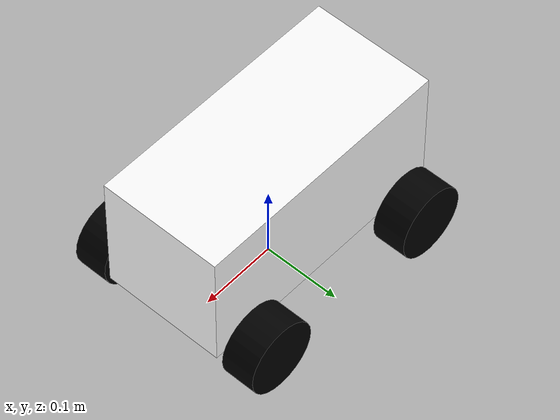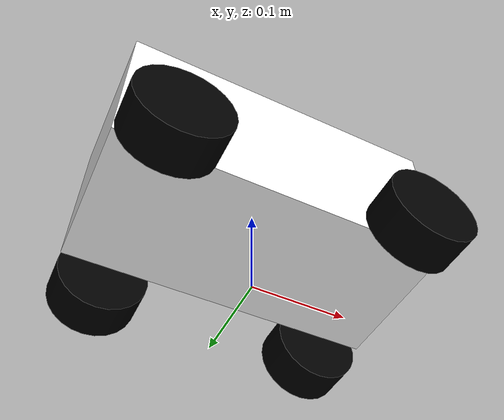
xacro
<?xml version="1.0"?>
<robot name="square_robot" xmlns:xacro="http://www.ros.org/wiki/xacro">
<!-- 小车自定义参数部分 -->
	<!-- xacro自定义变量参数 -->
    <!-- 轮子 宽0.044m 半径0.047m -->
    <xacro:property name="length_wheel" value="0.044" />
    <xacro:property name="radius_wheel" value="0.047" />
	<!-- 左右轮子与车身中心点(0,0,0)的vx轴距离 0.124m y轴距离 0.11m z轴距离 0.082m-->
	<xacro:property name="FL" value="0.124 0.11 -0.082"/>
    <xacro:property name="FR" value="0.124 -0.11 -0.082"/>
    <xacro:property name="BL" value="-0.124 0.11 -0.082"/>
    <xacro:property name="BR" value="-0.124 -0.11 -0.082"/>
	<!-- 长方体车身  (x方向)长=0.342m (y方向)宽0.16m (z方向)高=0.172-0.08m-->
	<xacro:property name="bodywork" value="0.342 0.16 0.164"/>
	<!-- 轮子与车身中心点的距离 0.11m -->
    <xacro:property name="PI"           value="3.1415926"/>
    <!-- 定义一个名为 default_inertial 的XACRO宏 接受“mass”这个参数 -->
    <xacro:macro name="default_inertial" params="mass">
        <!-- 物体惯性描述 -->
        <inertial>
            <!-- 接受mass的参数传递单位KG -->
            <mass value="${mass}" />
            <!-- 定义了物体的惯性张量。惯性张量是一个描述物体质量分布对旋转惯性的影响的3x3矩阵
            其中ixx、iyy和izz是物体在x、y和z轴上的转动惯量，而ixy、ixz和iyz是惯性积，这里都设为0，
            表示物体在这些轴上的质量分布是对称的 -->
            <inertia ixx="0.1" ixy="0.0"
                     izz="0.1" ixz="0.0"
                     iyy="0.1" iyz="0.0"/>
        </inertial>
    </xacro:macro>
<!-- 小车自定义参数部分 -->

<!-- 小车整体描述 -->
	<!-- 小车整体坐标部分 -->
    <!-- 用于定义机器人的一个刚体链接,这里会把2_car当成父坐标系 -->
    <link name="2_car">
    </link>
	<!-- 小车整体坐标部分 -->
	<!-- 底盘部分 -->
    <link name="base_footprint">
   		<visual>
			<geometry>
      				<box size="0.001 0.001 0.001"/>
     		</geometry>
			<!-- 这里会以它的的父坐标为准来显示base_footprint的位置和姿态 -->
   		</visual>
		<xacro:default_inertial mass="0.0001"/>
 	</link>
	<!-- 底盘部分 -->
	<!-- 车身部分 -->
	<link name="base_link">
   		<visual>
			<geometry>
      				<box size="${bodywork}"/>
     		</geometry>
			<material name="white">
				<color rgba="1 1 1 1"/>
			</material>
   		</visual>
		<collision>
			<geometry>
       				<box size="${bodywork}"/>
			</geometry>
		</collision>
        <xacro:default_inertial mass="8.2"/>
 	</link>
	<!-- 车身部分 -->
	<!-- 轮子部分 -->
	<xacro:macro name="wheel_" params="num">
 	<link name="wheel_${num}">
   		<visual>
     			<geometry>
					<!-- 轮子宽${length_wheel}，半径${radius_wheel} -->
       				<cylinder length="${length_wheel}" radius="${radius_wheel}"/>
     			</geometry>
   				<material name="black">
					<color rgba="0 0 0 1"/>
				</material>
		</visual>
		<collision>
			<geometry>
       				<cylinder length="${length_wheel}" radius="${radius_wheel}"/>
			</geometry>
		</collision>
		<xacro:default_inertial mass="0.5"/>
 	</link>
	</xacro:macro>
	<xacro:wheel_ num="1" />
	<xacro:wheel_ num="2" />
	<xacro:wheel_ num="3" />
	<xacro:wheel_ num="4" />
	<!-- 轮子部分 -->

	<!-- 底盘关节部分 -->
    <!-- 定义了一个名为2_car_joint的固定关节(fixed)
         并把2_car当成base_footprint的父坐标 -->
    <joint name="2_car_joint" type="fixed">
        <parent link = "2_car"/>
        <child  link = "base_footprint"/>
		<origin xyz  = "0 0 0" />
    </joint>
	<!-- 底盘关节部分 -->
	<!-- 车身关节部分 -->
	<joint name="base_footprint_joint" type="fixed">
		<parent link = "base_footprint" />
		<child  link = "base_link" />
		<origin xyz  = "0 0 0.126" />
	</joint>
	<!-- 车身关节部分 -->
	<!-- 轮子关节连接部分 -->
    <!-- 定义了一个名为wheel_joints的连续旋转的关节(continuous) xacro宏，没有固定的范围限制，例如电机驱动的轮子 -->
	<xacro:macro name="wheel_joints" params="num position">
		<joint name="base_to_wheel${num}" type="continuous">
			<parent link = "base_link"/>
			<child  link = "wheel_${num}"/>
			<origin rpy  = "${-PI/2} 0 0" xyz="${position}"/>
			<!-- 这定义了关节旋转的轴。xyz="0 0 1"意味着关节是沿着z轴旋转的 -->
			<axis   xyz  = "0 0 1" />
			<!-- 这是关节的限制 effort="100": 关节可以施加的最大努力（通常是以牛顿或牛顿·米为单位的力或力矩）
                          velocity="100": 关节可以达到的最大速度（通常是以弧度/秒为单位的角速度） -->
			<limit  effort = "1" velocity="33.504" />
		</joint>
	</xacro:macro>
	<xacro:wheel_joints num="1" position="${FL}" />
	<xacro:wheel_joints num="2" position="${BL}" />
	<xacro:wheel_joints num="3" position="${FR}" />
	<xacro:wheel_joints num="4" position="${BR}" />
	<!-- 轮子关节连接部分 -->
<!-- 小车整体描述 -->
	<gazebo>
	<plugin name="my_plugin" filename="libgazebo_hellow.so">
	</plugin>
	</gazebo>
</robot>
